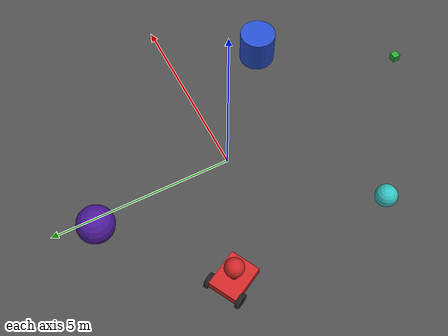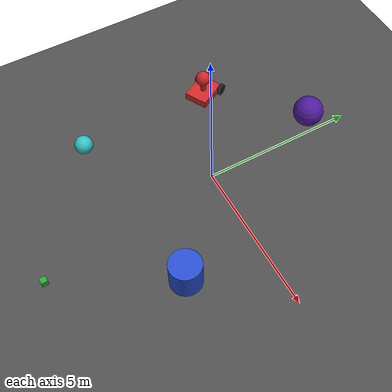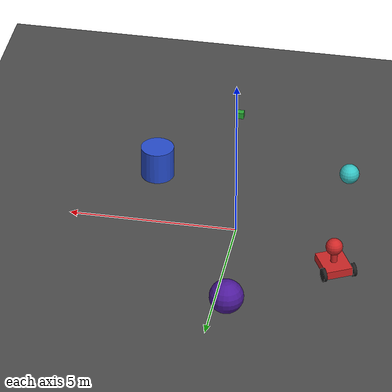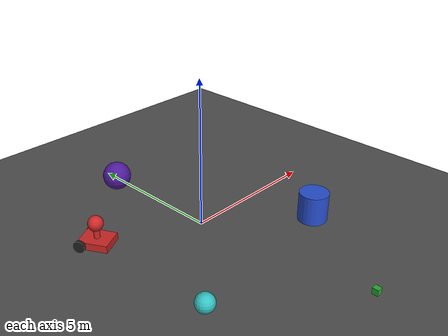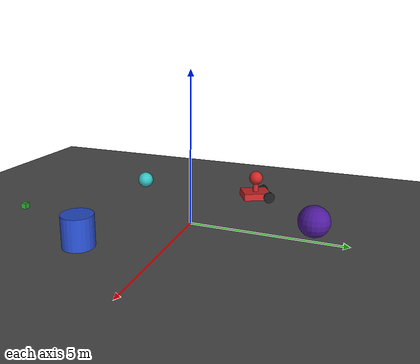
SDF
<sdf version="1.7">
 <world name="default">
  <light name="sun" type="directional">
   <pose>0 0 10 0 -0 0</pose>
   <diffuse>0.8 0.8 0.8 1</diffuse>
   <specular>0.2 0.2 0.2 1</specular>
   <attenuation>
    <range>1000</range>
    <constant>0.9</constant>
    <linear>0.01</linear>
    <quadratic>0.001</quadratic>
   </attenuation>
   <direction>-0.5 0.1 -0.9</direction>
   <spot><inner_angle>0</inner_angle><outer_angle>0</outer_angle><falloff>0</falloff></spot>
  </light>
  <model name="ground_plane">
   <static>1</static>
   <link name="link">
    <collision name="collision">
     <geometry><plane><normal>0 0 1</normal><size>100 100</size></plane></geometry>
     <surface>
      <contact><collide_bitmask>65535</collide_bitmask></contact>
      <friction><ode><mu>100</mu><mu2>50</mu2></ode></friction>
     </surface>
    </collision>
    <visual name="visual">
     <cast_shadows>0</cast_shadows>
     <geometry><plane><normal>0 0 1</normal><size>100 100</size></plane></geometry>
     <material>
      <script><uri>file://media/materials/scripts/gazebo.material</uri><name>Gazebo/Road</name></script>
     </material>
    </visual>
   </link>
  </model>
  <gravity>0 0 -9.8</gravity>
  <magnetic_field>6e-06 2.3e-05 -4.2e-05</magnetic_field>
  <atmosphere type="adiabatic"/>
  <physics type="ode">
   <max_step_size>0.001</max_step_size>
   <real_time_factor>1</real_time_factor>
   <real_time_update_rate>1000</real_time_update_rate>
  </physics>
  <scene><ambient>0.4 0.4 0.4 1</ambient><background>0.7 0.7 0.7 1</background><shadows>1</shadows></scene>
  <spherical_coordinates>
   <surface_model>EARTH_WGS84</surface_model>
   <latitude_deg>0</latitude_deg>
   <longitude_deg>0</longitude_deg>
   <elevation>0</elevation>
   <heading_deg>0</heading_deg>
  </spherical_coordinates>
  <model name="unit_sphere">
   <pose>-2.93645 -3.08008 0.3 0 -0 0</pose>
   <link name="link">
    <inertial>
     <mass>1</mass>
     <inertia><ixx>0.1</ixx><ixy>0</ixy><ixz>0</ixz><iyy>0.1</iyy><iyz>0</iyz><izz>0.1</izz></inertia>
    </inertial>
    <collision name="collision"><geometry><sphere><radius>0.3</radius></sphere></geometry></collision>
    <visual name="visual">
     <geometry><sphere><radius>0.3</radius></sphere></geometry>
     <material>
      <script><name>Gazebo/Turquoise</name><uri>file://media/materials/scripts/gazebo.material</uri></script>
     </material>
    </visual>
   </link>
  </model>
  <model name="unit_sphere_1">
   <pose>-0.412534 3.89133 0.5 0 -0 0</pose>
   <link name="link">
    <inertial>
     <mass>1</mass>
     <inertia><ixx>0.1</ixx><ixy>0</ixy><ixz>0</ixz><iyy>0.1</iyy><iyz>0</iyz><izz>0.1</izz></inertia>
    </inertial>
    <collision name="collision"><geometry><sphere><radius>0.5</radius></sphere></geometry></collision>
    <visual name="visual">
     <geometry><sphere><radius>0.5</radius></sphere></geometry>
     <material>
      <script><name>Gazebo/Indigo</name><uri>file://media/materials/scripts/gazebo.material</uri></script>
     </material>
    </visual>
   </link>
  </model>
  <model name="unit_cylinder">
   <pose>2.82756 -2.42843 0.5 -0 -0 -0</pose>
   <link name="link">
    <inertial>
     <mass>1</mass>
     <inertia><ixx>0.145833</ixx><ixy>0</ixy><ixz>0</ixz><iyy>0.145833</iyy><iyz>0</iyz><izz>0.125</izz></inertia>
    </inertial>
    <collision name="collision">
     <geometry><cylinder><radius>0.5</radius><length>1</length></cylinder></geometry>
    </collision>
    <visual name="visual">
     <geometry><cylinder><radius>0.5</radius><length>1</length></cylinder></geometry>
     <material>
      <script><name>Gazebo/Blue</name><uri>file://media/materials/scripts/gazebo.material</uri></script>
     </material>
    </visual>
   </link>
  </model>
  <model name="unit_box">
   <pose>0.894722 -5.991 0.1 2e-06 -5e-06 1e-06</pose>
   <link name="link">
    <inertial>
     <mass>1</mass>
     <inertia>
      <ixx>0.166667</ixx>
      <ixy>0</ixy>
      <ixz>0</ixz>
      <iyy>0.166667</iyy>
      <iyz>0</iyz>
      <izz>0.166667</izz>
     </inertia>
    </inertial>
    <collision name="collision"><geometry><box><size>0.2 0.2 0.200002</size></box></geometry></collision>
    <visual name="visual">
     <geometry><box><size>0.2 0.2 0.200002</size></box></geometry>
     <material>
      <script><name>Gazebo/Green</name><uri>file://media/materials/scripts/gazebo.material</uri></script>
     </material>
    </visual>
   </link>
  </model>
  <audio><device>default</device></audio>
  <model name="ddrobot">
   <link name="base_footprint1">
    <inertial>
     <pose>0.034444 0 0.265 0 -0 0</pose>
     <mass>0.54</mass>
     <inertia>
      <ixx>0.0702525</ixx>
      <ixy>0</ixy>
      <ixz>0.0076725</ixz>
      <iyy>0.0722608</iyy>
      <iyz>0</iyz>
      <izz>0.0383435</izz>
     </inertia>
    </inertial>
    <collision name="base_footprint1_fixed_joint_lump__chasis_collision">
     <geometry><box><size>1 0.8 0.25</size></box></geometry>
    </collision>
    <collision name="base_footprint1_fixed_joint_lump__passive_wheel_holder1_collision_1">
     <pose>0.465 0 -0.1 0 -0 0</pose>
     <geometry><cylinder><length>0.18</length><radius>0.01</radius></cylinder></geometry>
    </collision>
    <collision name="base_footprint1_fixed_joint_lump__passive_wheel1_collision_2">
     <pose>0.465 0 -0.195 0 -0 0</pose>
     <geometry><sphere><radius>0.01</radius></sphere></geometry>
     <surface><friction><ode><mu>0</mu><mu2>0</mu2></ode></friction></surface>
    </collision>
    <collision name="base_footprint1_fixed_joint_lump__head_mount_collision_3">
     <pose>0 0 0.23 0 -0 0</pose>
     <geometry><cylinder><length>0.5</length><radius>0.1</radius></cylinder></geometry>
    </collision>
    <collision name="base_footprint1_fixed_joint_lump__head1_collision_4">
     <pose>0 0 0.63 0 -0 0</pose>
     <geometry><sphere><radius>0.25</radius></sphere></geometry>
    </collision>
    <visual name="base_footprint1_fixed_joint_lump__chasis_visual">
     <geometry><box><size>1 0.8 0.25</size></box></geometry>
     <material>
      <script><name>Gazebo/Red</name><uri>file://media/materials/scripts/gazebo.material</uri></script>
     </material>
    </visual>
    <visual name="base_footprint1_fixed_joint_lump__passive_wheel_holder1_visual_1">
     <pose>0.465 0 -0.1 0 -0 0</pose>
     <geometry><cylinder><length>0.18</length><radius>0.01</radius></cylinder></geometry>
     <material>
      <script><name>Gazebo/Red</name><uri>file://media/materials/scripts/gazebo.material</uri></script>
     </material>
    </visual>
    <visual name="base_footprint1_fixed_joint_lump__passive_wheel1_visual_2">
     <pose>0.465 0 -0.195 0 -0 0</pose>
     <geometry><sphere><radius>0.01</radius></sphere></geometry>
     <material>
      <script><name>Gazebo/Black</name><uri>file://media/materials/scripts/gazebo.material</uri></script>
     </material>
    </visual>
    <visual name="base_footprint1_fixed_joint_lump__head_mount_visual_3">
     <pose>0 0 0.23 0 -0 0</pose>
     <geometry><cylinder><length>0.5</length><radius>0.1</radius></cylinder></geometry>
     <material>
      <script><name>Gazebo/Red</name><uri>file://media/materials/scripts/gazebo.material</uri></script>
     </material>
    </visual>
    <visual name="base_footprint1_fixed_joint_lump__head1_visual_4">
     <pose>0 0 0.63 0 -0 0</pose>
     <geometry><sphere><radius>0.25</radius></sphere></geometry>
     <material>
      <script><name>Gazebo/Red</name><uri>file://media/materials/scripts/gazebo.material</uri></script>
     </material>
    </visual>
   </link>
   <joint name="joint_left_back_wheel" type="revolute">
    <pose relative_to="base_footprint1">-0.4 0.45 0 0 -0 0</pose>
    <parent>base_footprint1</parent>
    <child>left_back_wheel</child>
    <axis>
     <xyz>0 1 0</xyz>
     <limit><lower>-1e+16</lower><upper>1e+16</upper></limit>
     <dynamics><spring_reference>0</spring_reference><spring_stiffness>0</spring_stiffness></dynamics>
    </axis>
   </joint>
   <link name="left_back_wheel">
    <pose relative_to="joint_left_back_wheel">0 0 0 0 -0 0</pose>
    <inertial>
     <pose>0 0 0 1.5708 -0 0</pose>
     <mass>0.015</mass>
     <inertia>
      <ixx>0.0001625</ixx>
      <ixy>0</ixy>
      <ixz>0</ixz>
      <iyy>0.0001625</iyy>
      <iyz>0</iyz>
      <izz>0.0003</izz>
     </inertia>
    </inertial>
    <collision name="left_back_wheel_collision">
     <pose>0 0 0 1.5708 -0 0</pose>
     <geometry><sphere><radius>0.2</radius></sphere></geometry>
     <surface>
      <contact><ode><kp>1e+07</kp><kd>1</kd></ode></contact>
      <friction><ode><mu>10</mu><mu2>10</mu2></ode></friction>
     </surface>
    </collision>
    <visual name="left_back_wheel_visual">
     <pose>0 0 0 1.5708 -0 0</pose>
     <geometry><cylinder><length>0.1</length><radius>0.2</radius></cylinder></geometry>
     <material>
      <script><name>Gazebo/Black</name><uri>file://media/materials/scripts/gazebo.material</uri></script>
     </material>
    </visual>
   </link>
   <joint name="joint_right_back_wheel" type="revolute">
    <pose relative_to="base_footprint1">-0.4 -0.45 0 0 -0 0</pose>
    <parent>base_footprint1</parent>
    <child>right_back_wheel</child>
    <axis>
     <xyz>0 1 0</xyz>
     <limit><lower>-1e+16</lower><upper>1e+16</upper></limit>
     <dynamics><spring_reference>0</spring_reference><spring_stiffness>0</spring_stiffness></dynamics>
    </axis>
   </joint>
   <link name="right_back_wheel">
    <pose relative_to="joint_right_back_wheel">0 0 0 0 -0 0</pose>
    <inertial>
     <pose>0 0 0 1.5708 -0 0</pose>
     <mass>0.015</mass>
     <inertia>
      <ixx>0.0001625</ixx>
      <ixy>0</ixy>
      <ixz>0</ixz>
      <iyy>0.0001625</iyy>
      <iyz>0</iyz>
      <izz>0.0003</izz>
     </inertia>
    </inertial>
    <collision name="right_back_wheel_collision">
     <pose>0 0 0 1.5708 -0 0</pose>
     <geometry><sphere><radius>0.2</radius></sphere></geometry>
     <surface>
      <contact><ode><kp>1e+07</kp><kd>1</kd></ode></contact>
      <friction><ode><mu>10</mu><mu2>10</mu2></ode></friction>
     </surface>
    </collision>
    <visual name="right_back_wheel_visual">
     <pose>0 0 0 1.5708 -0 0</pose>
     <geometry><cylinder><length>0.1</length><radius>0.2</radius></cylinder></geometry>
     <material>
      <script><name>Gazebo/Black</name><uri>file://media/materials/scripts/gazebo.material</uri></script>
     </material>
    </visual>
   </link>
   <static>0</static>
   <plugin name="diff_drive" filename="libgazebo_ros_diff_drive.so">
    <left_joint>joint_left_back_wheel</left_joint>
    <right_joint>joint_right_back_wheel</right_joint>
    <wheel_separation>0.9</wheel_separation>
    <wheel_diameter>0.4</wheel_diameter>
    <max_wheel_torque>20</max_wheel_torque>
    <max_wheel_acceleration>10.0</max_wheel_acceleration>
    <odometry_frame>odom</odometry_frame>
    <robot_base_frame>base_footprint1</robot_base_frame>
    <publish_odom>1</publish_odom>
    <publish_odom_tf>1</publish_odom_tf>
    <publish_wheel_tf>1</publish_wheel_tf>
   </plugin>
   <pose>-3.11812 1.4261 0.202308 1e-06 -0.005771 -1.08298</pose>
  </model>
 </world>
</sdf>
